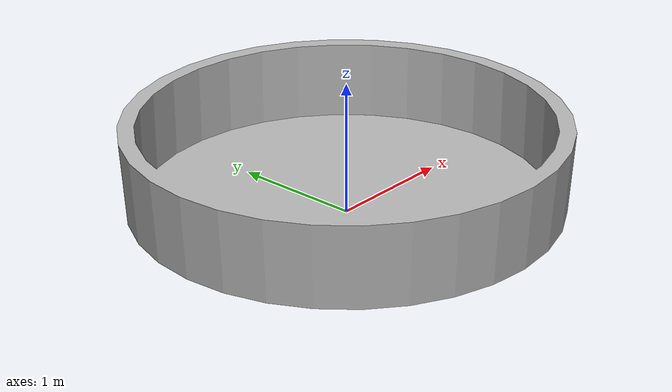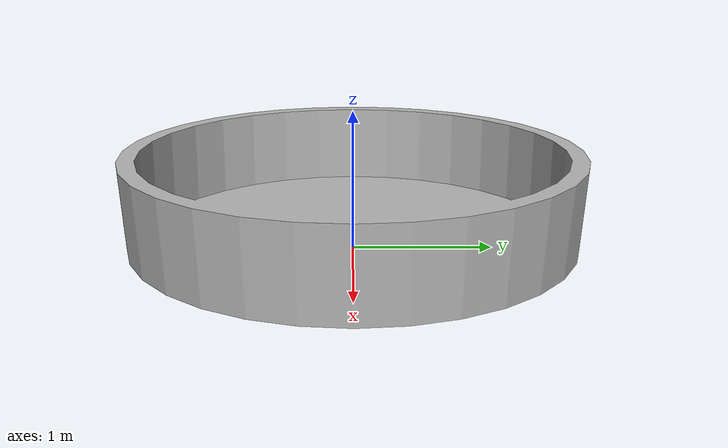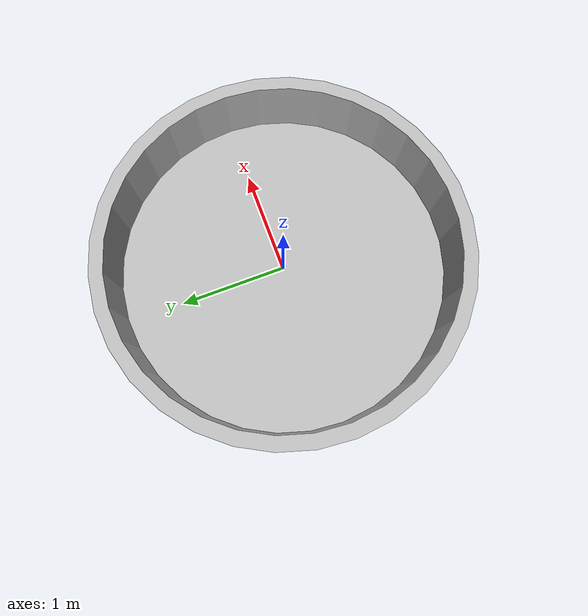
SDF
<?xml version="1.0" ?>
<sdf version="1.5">
  <model name="ring_wall_type2">
    <static>true</static>
    <link name="link">
      <collision name="surface">
        <pose>0 0 0.42 0 0 0</pose>
        <geometry>
          <mesh>
          <uri>model://ring_wall/meshes/ring_wall.obj</uri>
           <scale>0.015 0.015 0.015</scale>
          </mesh>
        </geometry>
      </collision>

      <visual name="visual">
        <pose>0 0 0.42 0 0 0</pose>
        <geometry>
          <mesh>
            <uri>model://ring_wall/meshes/ring_wall.obj</uri>
             <scale>0.015 0.015 0.015</scale>
          </mesh>
        </geometry>
      </visual>
    </link>
  </model>
</sdf>
